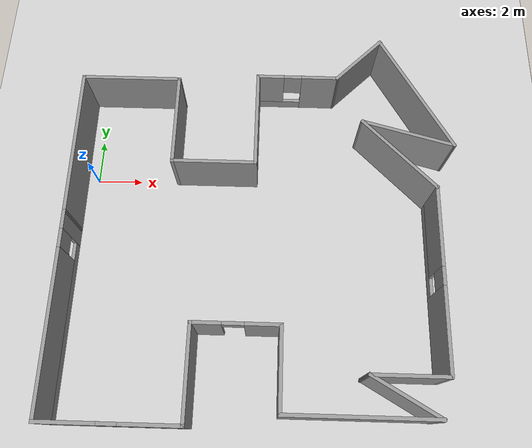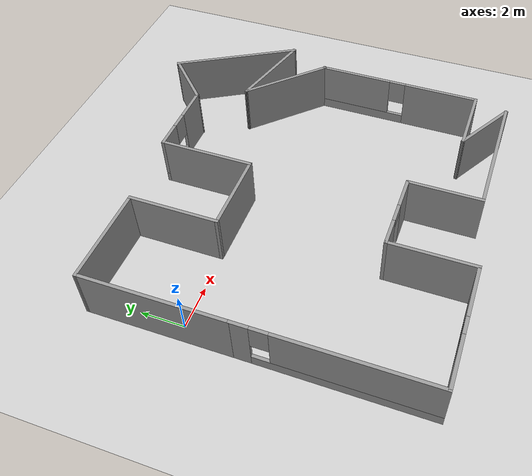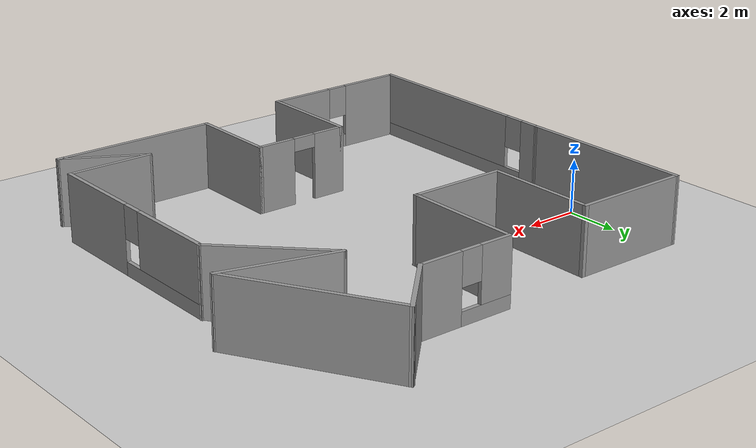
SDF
<sdf version="1.7">
 <world name="default">
  <light name="sun" type="directional">
   <pose>0 0 10 0 -0 0</pose>
   <diffuse>0.8 0.8 0.8 1</diffuse>
   <specular>0.2 0.2 0.2 1</specular>
   <attenuation>
    <range>1000</range>
    <constant>0.9</constant>
    <linear>0.01</linear>
    <quadratic>0.001</quadratic>
   </attenuation>
   <direction>-0.5 0.1 -0.9</direction>
   <spot><inner_angle>0</inner_angle><outer_angle>0</outer_angle><falloff>0</falloff></spot>
  </light>
  <model name="ground_plane">
   <static>1</static>
   <link name="link">
    <collision name="collision">
     <geometry><plane><normal>0 0 1</normal><size>100 100</size></plane></geometry>
     <surface><friction><ode><mu>100</mu><mu2>50</mu2></ode></friction></surface>
    </collision>
    <visual name="visual">
     <cast_shadows>0</cast_shadows>
     <geometry><plane><normal>0 0 1</normal><size>100 100</size></plane></geometry>
     <material>
      <script><uri>file://media/materials/scripts/gazebo.material</uri><name>Gazebo/Grey</name></script>
     </material>
    </visual>
   </link>
  </model>
  <gravity>0 0 -9.8</gravity>
  <magnetic_field>6e-06 2.3e-05 -4.2e-05</magnetic_field>
  <atmosphere type="adiabatic"/>
  <physics type="ode">
   <max_step_size>0.001</max_step_size>
   <real_time_factor>1</real_time_factor>
   <real_time_update_rate>1000</real_time_update_rate>
  </physics>
  <scene><ambient>0.4 0.4 0.4 1</ambient><background>0.7 0.7 0.7 1</background><shadows>1</shadows></scene>
  <audio><device>default</device></audio>
  <spherical_coordinates>
   <surface_model>EARTH_WGS84</surface_model>
   <latitude_deg>0</latitude_deg>
   <longitude_deg>0</longitude_deg>
   <elevation>0</elevation>
   <heading_deg>0</heading_deg>
  </spherical_coordinates>
  <model name="TestRoom.world">
   <pose>7.73313 -2.20119 0 0 -0 0</pose>
   <link name="Wall_0">
    <pose>-8.30571 -4.43929 0 0 -0 -1.5708</pose>
    <visual name="Wall_0_Visual_0">
     <pose>-3.82648 0 1.25 0 -0 0</pose>
     <geometry><box><size>0.847035 0.15 2.5</size></box></geometry>
     <material>
      <script><uri>file://media/materials/scripts/gazebo.material</uri><name>Gazebo/Grey</name></script>
      <ambient>1 1 1 1</ambient>
     </material>
     <meta><layer>0</layer></meta>
    </visual>
    <collision name="Wall_0_Collision_0">
     <geometry><box><size>0.847035 0.15 2.5</size></box></geometry>
     <pose>-3.82648 0 1.25 0 -0 0</pose>
    </collision>
    <visual name="Wall_0_Visual_1">
     <pose>0.423518 0 0.25 0 -0 0</pose>
     <geometry><box><size>7.65297 0.15 0.5</size></box></geometry>
     <material>
      <script><uri>file://media/materials/scripts/gazebo.material</uri><name>Gazebo/Grey</name></script>
      <ambient>1 1 1 1</ambient>
     </material>
     <meta><layer>0</layer></meta>
    </visual>
    <collision name="Wall_0_Collision_1">
     <geometry><box><size>7.65297 0.15 0.5</size></box></geometry>
     <pose>0.423518 0 0.25 0 -0 0</pose>
    </collision>
    <visual name="Wall_0_Visual_2">
     <pose>0.823518 0 1.5 0 -0 0</pose>
     <geometry><box><size>6.85297 0.15 2</size></box></geometry>
     <material>
      <script><uri>file://media/materials/scripts/gazebo.material</uri><name>Gazebo/Grey</name></script>
      <ambient>1 1 1 1</ambient>
     </material>
     <meta><layer>0</layer></meta>
    </visual>
    <collision name="Wall_0_Collision_2">
     <geometry><box><size>6.85297 0.15 2</size></box></geometry>
     <pose>0.823518 0 1.5 0 -0 0</pose>
    </collision>
    <visual name="Wall_0_Visual_3">
     <pose>-3.00297 0 1.9 0 -0 0</pose>
     <geometry><box><size>0.8 0.15 1.2</size></box></geometry>
     <material>
      <script><uri>file://media/materials/scripts/gazebo.material</uri><name>Gazebo/Grey</name></script>
      <ambient>1 1 1 1</ambient>
     </material>
     <meta><layer>0</layer></meta>
    </visual>
    <collision name="Wall_0_Collision_3">
     <geometry><box><size>0.8 0.15 1.2</size></box></geometry>
     <pose>-3.00297 0 1.9 0 -0 0</pose>
    </collision>
   </link>
   <link name="Wall_1">
    <pose>-5.50571 -8.61429 0 0 -0 0</pose>
    <visual name="Wall_1_Visual_0">
     <pose>-1.65254 0 1.25 0 -0 0</pose>
     <geometry><box><size>2.44493 0.15 2.5</size></box></geometry>
     <material>
      <script><uri>file://media/materials/scripts/gazebo.material</uri><name>Gazebo/Grey</name></script>
      <ambient>1 1 1 1</ambient>
     </material>
     <meta><layer>0</layer></meta>
    </visual>
    <collision name="Wall_1_Collision_0">
     <geometry><box><size>2.44493 0.15 2.5</size></box></geometry>
     <pose>-1.65254 0 1.25 0 -0 0</pose>
    </collision>
    <visual name="Wall_1_Visual_1">
     <pose>1.22246 0 0.25 0 -0 0</pose>
     <geometry><box><size>3.30507 0.15 0.5</size></box></geometry>
     <material>
      <script><uri>file://media/materials/scripts/gazebo.material</uri><name>Gazebo/Grey</name></script>
      <ambient>1 1 1 1</ambient>
     </material>
     <meta><layer>0</layer></meta>
    </visual>
    <collision name="Wall_1_Collision_1">
     <geometry><box><size>3.30507 0.15 0.5</size></box></geometry>
     <pose>1.22246 0 0.25 0 -0 0</pose>
    </collision>
    <visual name="Wall_1_Visual_2">
     <pose>1.62247 0 1.5 0 -0 0</pose>
     <geometry><box><size>2.50507 0.15 2</size></box></geometry>
     <material>
      <script><uri>file://media/materials/scripts/gazebo.material</uri><name>Gazebo/Grey</name></script>
      <ambient>1 1 1 1</ambient>
     </material>
     <meta><layer>0</layer></meta>
    </visual>
    <collision name="Wall_1_Collision_2">
     <geometry><box><size>2.50507 0.15 2</size></box></geometry>
     <pose>1.62247 0 1.5 0 -0 0</pose>
    </collision>
    <visual name="Wall_1_Visual_3">
     <pose>-0.03007 0 1.9 0 -0 0</pose>
     <geometry><box><size>0.8 0.15 1.2</size></box></geometry>
     <material>
      <script><uri>file://media/materials/scripts/gazebo.material</uri><name>Gazebo/Grey</name></script>
      <ambient>1 1 1 1</ambient>
     </material>
     <meta><layer>0</layer></meta>
    </visual>
    <collision name="Wall_1_Collision_3">
     <geometry><box><size>0.8 0.15 1.2</size></box></geometry>
     <pose>-0.03007 0 1.9 0 -0 0</pose>
    </collision>
   </link>
   <link name="Wall_10">
    <collision name="Wall_10_Collision">
     <geometry><box><size>4.25 0.15 2.5</size></box></geometry>
     <pose>0 0 1.25 0 -0 0</pose>
    </collision>
    <visual name="Wall_10_Visual">
     <pose>0 0 1.25 0 -0 0</pose>
     <geometry><box><size>4.25 0.15 2.5</size></box></geometry>
     <material>
      <script><uri>file://media/materials/scripts/gazebo.material</uri><name>Gazebo/Grey</name></script>
      <ambient>1 1 1 1</ambient>
     </material>
     <meta><layer>0</layer></meta>
    </visual>
    <pose>6.31384 3.83105 0 0 -0 -0.261799</pose>
   </link>
   <link name="Wall_11">
    <collision name="Wall_11_Collision">
     <geometry><box><size>6.25 0.15 2.5</size></box></geometry>
     <pose>0 0 1.25 0 -0 0</pose>
    </collision>
    <visual name="Wall_11_Visual">
     <pose>0 0 1.25 0 -0 0</pose>
     <geometry><box><size>6.25 0.15 2.5</size></box></geometry>
     <material>
      <script><uri>file://media/materials/scripts/gazebo.material</uri><name>Gazebo/Grey</name></script>
      <ambient>1 1 1 1</ambient>
     </material>
     <meta><layer>0</layer></meta>
    </visual>
    <pose>6.76899 5.94184 0 0 -0 2.0944</pose>
   </link>
   <link name="Wall_12">
    <collision name="Wall_12_Collision">
     <geometry><box><size>3 0.15 2.5</size></box></geometry>
     <pose>0 0 1.25 0 -0 0</pose>
    </collision>
    <visual name="Wall_12_Visual">
     <pose>0 0 1.25 0 -0 0</pose>
     <geometry><box><size>3 0.15 2.5</size></box></geometry>
     <material>
      <script><uri>file://media/materials/scripts/gazebo.material</uri><name>Gazebo/Grey</name></script>
      <ambient>1 1 1 1</ambient>
     </material>
     <meta><layer>0</layer></meta>
    </visual>
    <pose>4.23636 7.5756 0 0 -0 -2.35619</pose>
   </link>
   <link name="Wall_13">
    <pose>1.42873 6.56797 0 0 -0 3.14159</pose>
    <visual name="Wall_13_Visual_0">
     <pose>-1.02822 0 1.25 0 -0 0</pose>
     <geometry><box><size>1.69355 0.15 2.5</size></box></geometry>
     <material>
      <script><uri>file://media/materials/scripts/gazebo.material</uri><name>Gazebo/Grey</name></script>
      <ambient>1 1 1 1</ambient>
     </material>
     <meta><layer>0</layer></meta>
    </visual>
    <collision name="Wall_13_Collision_0">
     <geometry><box><size>1.69355 0.15 2.5</size></box></geometry>
     <pose>-1.02822 0 1.25 0 -0 0</pose>
    </collision>
    <visual name="Wall_13_Visual_1">
     <pose>0.846775 0 0.25 0 -0 0</pose>
     <geometry><box><size>2.05645 0.15 0.5</size></box></geometry>
     <material>
      <script><uri>file://media/materials/scripts/gazebo.material</uri><name>Gazebo/Grey</name></script>
      <ambient>1 1 1 1</ambient>
     </material>
     <meta><layer>0</layer></meta>
    </visual>
    <collision name="Wall_13_Collision_1">
     <geometry><box><size>2.05645 0.15 0.5</size></box></geometry>
     <pose>0.846775 0 0.25 0 -0 0</pose>
    </collision>
    <visual name="Wall_13_Visual_2">
     <pose>1.24677 0 1.5 0 -0 0</pose>
     <geometry><box><size>1.25645 0.15 2</size></box></geometry>
     <material>
      <script><uri>file://media/materials/scripts/gazebo.material</uri><name>Gazebo/Grey</name></script>
      <ambient>1 1 1 1</ambient>
     </material>
     <meta><layer>0</layer></meta>
    </visual>
    <collision name="Wall_13_Collision_2">
     <geometry><box><size>1.25645 0.15 2</size></box></geometry>
     <pose>1.24677 0 1.5 0 -0 0</pose>
    </collision>
    <visual name="Wall_13_Visual_3">
     <pose>0.21855 0 1.9 0 -0 0</pose>
     <geometry><box><size>0.8 0.15 1.2</size></box></geometry>
     <material>
      <script><uri>file://media/materials/scripts/gazebo.material</uri><name>Gazebo/Grey</name></script>
      <ambient>1 1 1 1</ambient>
     </material>
     <meta><layer>0</layer></meta>
    </visual>
    <collision name="Wall_13_Collision_3">
     <geometry><box><size>0.8 0.15 1.2</size></box></geometry>
     <pose>0.21855 0 1.9 0 -0 0</pose>
    </collision>
   </link>
   <link name="Wall_14">
    <collision name="Wall_14_Collision">
     <geometry><box><size>4.5 0.15 2.5</size></box></geometry>
     <pose>0 0 1.25 0 -0 0</pose>
    </collision>
    <visual name="Wall_14_Visual">
     <pose>0 0 1.25 0 -0 0</pose>
     <geometry><box><size>4.5 0.15 2.5</size></box></geometry>
     <material>
      <script><uri>file://media/materials/scripts/gazebo.material</uri><name>Gazebo/Grey</name></script>
      <ambient>1 1 1 1</ambient>
     </material>
     <meta><layer>0</layer></meta>
    </visual>
    <pose>-0.371265 4.39297 0 0 -0 -1.5708</pose>
   </link>
   <link name="Wall_15">
    <collision name="Wall_15_Collision">
     <geometry><box><size>3.75 0.15 2.5</size></box></geometry>
     <pose>0 0 1.25 0 -0 0</pose>
    </collision>
    <visual name="Wall_15_Visual">
     <pose>0 0 1.25 0 -0 0</pose>
     <geometry><box><size>3.75 0.15 2.5</size></box></geometry>
     <material>
      <script><uri>file://media/materials/scripts/gazebo.material</uri><name>Gazebo/Grey</name></script>
      <ambient>1 1 1 1</ambient>
     </material>
     <meta><layer>0</layer></meta>
    </visual>
    <pose>-2.17127 2.21797 0 0 -0 3.14159</pose>
   </link>
   <link name="Wall_16">
    <collision name="Wall_16_Collision">
     <geometry><box><size>4.25 0.15 2.5</size></box></geometry>
     <pose>0 0 1.25 0 -0 0</pose>
    </collision>
    <visual name="Wall_16_Visual">
     <pose>0 0 1.25 0 -0 0</pose>
     <geometry><box><size>4.25 0.15 2.5</size></box></geometry>
     <material>
      <script><uri>file://media/materials/scripts/gazebo.material</uri><name>Gazebo/Grey</name></script>
      <ambient>1 1 1 1</ambient>
     </material>
     <meta><layer>0</layer></meta>
    </visual>
    <pose>-3.97126 4.26797 0 0 -0 1.5708</pose>
   </link>
   <link name="Wall_17">
    <collision name="Wall_17_Collision">
     <geometry><box><size>4.5 0.15 2.5</size></box></geometry>
     <pose>0 0 1.25 0 -0 0</pose>
    </collision>
    <visual name="Wall_17_Visual">
     <pose>0 0 1.25 0 -0 0</pose>
     <geometry><box><size>4.5 0.15 2.5</size></box></geometry>
     <material>
      <script><uri>file://media/materials/scripts/gazebo.material</uri><name>Gazebo/Grey</name></script>
      <ambient>1 1 1 1</ambient>
     </material>
     <meta><layer>0</layer></meta>
    </visual>
    <pose>-6.14626 6.31797 0 0 -0 3.14159</pose>
   </link>
   <link name="Wall_18">
    <collision name="Wall_18_Collision">
     <geometry><box><size>6.73227 0.15 2.5</size></box></geometry>
     <pose>0 0 1.25 0 -0 0</pose>
    </collision>
    <visual name="Wall_18_Visual">
     <pose>0 0 1.25 0 -0 0</pose>
     <geometry><box><size>6.73227 0.15 2.5</size></box></geometry>
     <material>
      <script><uri>file://media/materials/scripts/gazebo.material</uri><name>Gazebo/Grey</name></script>
      <ambient>1 1 1 1</ambient>
     </material>
     <meta><layer>0</layer></meta>
    </visual>
    <pose>-8.31349 3.02684 0 0 -0 -1.56843</pose>
   </link>
   <link name="Wall_2">
    <collision name="Wall_2_Collision">
     <geometry><box><size>4 0.15 2.5</size></box></geometry>
     <pose>0 0 1.25 0 -0 0</pose>
    </collision>
    <visual name="Wall_2_Visual">
     <pose>0 0 1.25 0 -0 0</pose>
     <geometry><box><size>4 0.15 2.5</size></box></geometry>
     <material>
      <script><uri>file://media/materials/scripts/gazebo.material</uri><name>Gazebo/Grey</name></script>
      <ambient>1 1 1 1</ambient>
     </material>
     <meta><layer>0</layer></meta>
    </visual>
    <pose>-2.70571 -6.68929 0 0 -0 1.5708</pose>
   </link>
   <link name="Wall_3">
    <pose>-0.905714 -4.76429 0 0 -0 0</pose>
    <visual name="Wall_3_Visual_0">
     <pose>-1.22113 0 1.25 0 -0 0</pose>
     <geometry><box><size>1.30775 0.15 2.5</size></box></geometry>
     <material>
      <script><uri>file://media/materials/scripts/gazebo.material</uri><name>Gazebo/Grey</name></script>
      <ambient>1 1 1 1</ambient>
     </material>
     <meta><layer>0</layer></meta>
    </visual>
    <collision name="Wall_3_Collision_0">
     <geometry><box><size>1.30775 0.15 2.5</size></box></geometry>
     <pose>-1.22113 0 1.25 0 -0 0</pose>
    </collision>
    <visual name="Wall_3_Visual_1">
     <pose>1.10387 0 1.25 0 -0 0</pose>
     <geometry><box><size>1.54225 0.15 2.5</size></box></geometry>
     <material>
      <script><uri>file://media/materials/scripts/gazebo.material</uri><name>Gazebo/Grey</name></script>
      <ambient>1 1 1 1</ambient>
     </material>
     <meta><layer>0</layer></meta>
    </visual>
    <collision name="Wall_3_Collision_1">
     <geometry><box><size>1.54225 0.15 2.5</size></box></geometry>
     <pose>1.10387 0 1.25 0 -0 0</pose>
    </collision>
    <visual name="Wall_3_Visual_2">
     <pose>-0.117249 0 2.25 0 -0 0</pose>
     <geometry><box><size>0.9 0.15 0.5</size></box></geometry>
     <material>
      <script><uri>file://media/materials/scripts/gazebo.material</uri><name>Gazebo/Grey</name></script>
      <ambient>1 1 1 1</ambient>
     </material>
     <meta><layer>0</layer></meta>
    </visual>
    <collision name="Wall_3_Collision_2">
     <geometry><box><size>0.9 0.15 0.5</size></box></geometry>
     <pose>-0.117249 0 2.25 0 -0 0</pose>
    </collision>
   </link>
   <link name="Wall_4">
    <collision name="Wall_4_Collision">
     <geometry><box><size>3.5 0.15 2.5</size></box></geometry>
     <pose>0 0 1.25 0 -0 0</pose>
    </collision>
    <visual name="Wall_4_Visual">
     <pose>0 0 1.25 0 -0 0</pose>
     <geometry><box><size>3.5 0.15 2.5</size></box></geometry>
     <material>
      <script><uri>file://media/materials/scripts/gazebo.material</uri><name>Gazebo/Grey</name></script>
      <ambient>1 1 1 1</ambient>
     </material>
     <meta><layer>0</layer></meta>
    </visual>
    <pose>0.894287 -6.43929 0 0 -0 -1.5708</pose>
   </link>
   <link name="Wall_5">
    <collision name="Wall_5_Collision">
     <geometry><box><size>6.25 0.15 2.5</size></box></geometry>
     <pose>0 0 1.25 0 -0 0</pose>
    </collision>
    <visual name="Wall_5_Visual">
     <pose>0 0 1.25 0 -0 0</pose>
     <geometry><box><size>6.25 0.15 2.5</size></box></geometry>
     <material>
      <script><uri>file://media/materials/scripts/gazebo.material</uri><name>Gazebo/Grey</name></script>
      <ambient>1 1 1 1</ambient>
     </material>
     <meta><layer>0</layer></meta>
    </visual>
    <pose>3.94429 -8.11429 0 0 -0 0</pose>
   </link>
   <link name="Wall_6">
    <collision name="Wall_6_Collision">
     <geometry><box><size>3.25 0.15 2.5</size></box></geometry>
     <pose>0 0 1.25 0 -0 0</pose>
    </collision>
    <visual name="Wall_6_Visual">
     <pose>0 0 1.25 0 -0 0</pose>
     <geometry><box><size>3.25 0.15 2.5</size></box></geometry>
     <material>
      <script><uri>file://media/materials/scripts/gazebo.material</uri><name>Gazebo/Grey</name></script>
      <ambient>1 1 1 1</ambient>
     </material>
     <meta><layer>0</layer></meta>
    </visual>
    <pose>5.65195 -7.33929 0 0 -0 2.61799</pose>
   </link>
   <link name="Wall_7">
    <collision name="Wall_7_Collision">
     <geometry><box><size>3.25 0.15 2.5</size></box></geometry>
     <pose>0 0 1.25 0 -0 0</pose>
    </collision>
    <visual name="Wall_7_Visual">
     <pose>0 0 1.25 0 -0 0</pose>
     <geometry><box><size>3.25 0.15 2.5</size></box></geometry>
     <material>
      <script><uri>file://media/materials/scripts/gazebo.material</uri><name>Gazebo/Grey</name></script>
      <ambient>1 1 1 1</ambient>
     </material>
     <meta><layer>0</layer></meta>
    </visual>
    <pose>5.85961 -6.56429 0 0 -0 0</pose>
   </link>
   <link name="Wall_8">
    <pose>7.40961 -2.63929 0 0 -0 1.5708</pose>
    <visual name="Wall_8_Visual_0">
     <pose>-2.18007 0 1.25 0 -0 0</pose>
     <geometry><box><size>3.63987 0.15 2.5</size></box></geometry>
     <material>
      <script><uri>file://media/materials/scripts/gazebo.material</uri><name>Gazebo/Grey</name></script>
      <ambient>1 1 1 1</ambient>
     </material>
     <meta><layer>0</layer></meta>
    </visual>
    <collision name="Wall_8_Collision_0">
     <geometry><box><size>3.63987 0.15 2.5</size></box></geometry>
     <pose>-2.18007 0 1.25 0 -0 0</pose>
    </collision>
    <visual name="Wall_8_Visual_1">
     <pose>1.81993 0 0.25 0 -0 0</pose>
     <geometry><box><size>4.36013 0.15 0.5</size></box></geometry>
     <material>
      <script><uri>file://media/materials/scripts/gazebo.material</uri><name>Gazebo/Grey</name></script>
      <ambient>1 1 1 1</ambient>
     </material>
     <meta><layer>0</layer></meta>
    </visual>
    <collision name="Wall_8_Collision_1">
     <geometry><box><size>4.36013 0.15 0.5</size></box></geometry>
     <pose>1.81993 0 0.25 0 -0 0</pose>
    </collision>
    <visual name="Wall_8_Visual_2">
     <pose>2.21993 0 1.5 0 -0 0</pose>
     <geometry><box><size>3.56013 0.15 2</size></box></geometry>
     <material>
      <script><uri>file://media/materials/scripts/gazebo.material</uri><name>Gazebo/Grey</name></script>
      <ambient>1 1 1 1</ambient>
     </material>
     <meta><layer>0</layer></meta>
    </visual>
    <collision name="Wall_8_Collision_2">
     <geometry><box><size>3.56013 0.15 2</size></box></geometry>
     <pose>2.21993 0 1.5 0 -0 0</pose>
    </collision>
    <visual name="Wall_8_Visual_3">
     <pose>0.039866 0 1.9 0 -0 0</pose>
     <geometry><box><size>0.8 0.15 1.2</size></box></geometry>
     <material>
      <script><uri>file://media/materials/scripts/gazebo.material</uri><name>Gazebo/Grey</name></script>
      <ambient>1 1 1 1</ambient>
     </material>
     <meta><layer>0</layer></meta>
    </visual>
    <collision name="Wall_8_Collision_3">
     <geometry><box><size>0.8 0.15 1.2</size></box></geometry>
     <pose>0.039866 0 1.9 0 -0 0</pose>
    </collision>
   </link>
   <link name="Wall_9">
    <collision name="Wall_9_Collision">
     <geometry><box><size>4.5 0.15 2.5</size></box></geometry>
     <pose>0 0 1.25 0 -0 0</pose>
    </collision>
    <visual name="Wall_9_Visual">
     <pose>0 0 1.25 0 -0 0</pose>
     <geometry><box><size>4.5 0.15 2.5</size></box></geometry>
     <material>
      <script><uri>file://media/materials/scripts/gazebo.material</uri><name>Gazebo/Grey</name></script>
      <ambient>1 1 1 1</ambient>
     </material>
     <meta><layer>0</layer></meta>
    </visual>
    <pose>5.87165 2.82367 0 0 -0 2.35619</pose>
   </link>
   <static>1</static>
  </model>
 </world>
</sdf>
